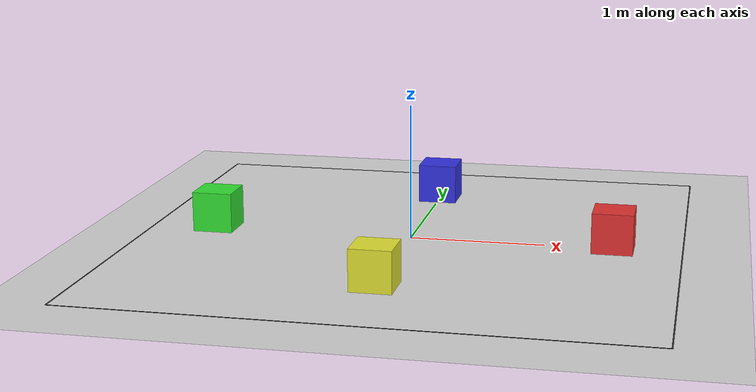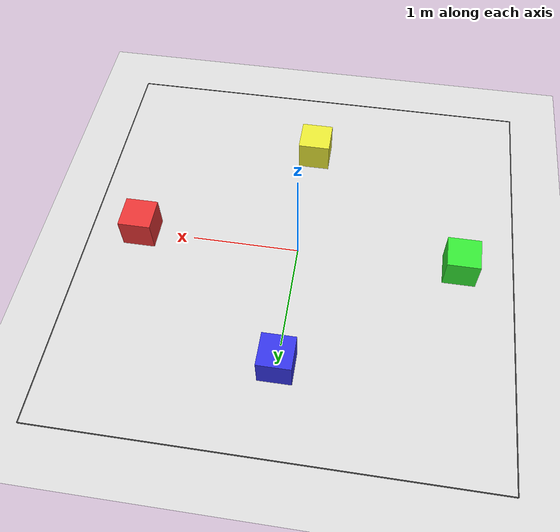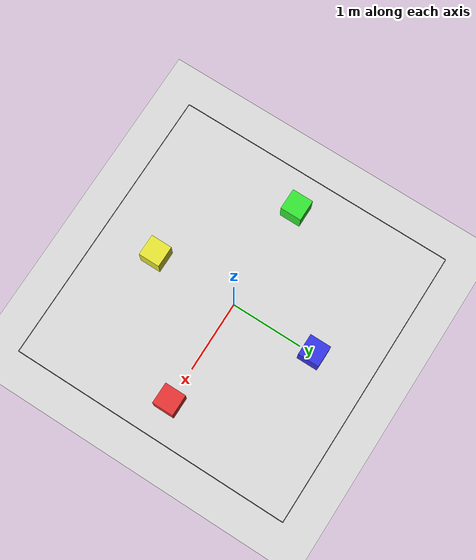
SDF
<?xml version="1.0" ?>
<sdf version="1.6">
  <world name="hover_lab">

    <!-- ── Physics ─────────────────────────────────────────────── -->
    <physics type="ode">
      <max_step_size>0.001</max_step_size>
      <real_time_factor>1.0</real_time_factor>
      <real_time_update_rate>1000</real_time_update_rate>
      <ode>
        <solver>
          <type>quick</type>
          <iters>50</iters>
        </solver>
      </ode>
    </physics>

    <!-- ── Lighting ────────────────────────────────────────────── -->
    <include>
      <uri>model://sun</uri>
    </include>

    <!-- ── Ground Plane (ultra-low friction = air cushion) ──────  -->
    <model name="ground_plane">
      <static>true</static>
      <link name="link">
        <collision name="collision">
          <geometry>
            <plane>
              <normal>0 0 1</normal>
              <size>10 10</size>
            </plane>
          </geometry>
          <surface>
            <friction>
              <ode>
                <mu>0.01</mu>
                <mu2>0.01</mu2>
              </ode>
            </friction>
            <bounce>
              <restitution_coefficient>0.0</restitution_coefficient>
            </bounce>
          </surface>
        </collision>
        <visual name="visual">
          <geometry>
            <plane>
              <normal>0 0 1</normal>
              <size>10 10</size>
            </plane>
          </geometry>
          <material>
            <ambient>0.85 0.85 0.85 1</ambient>
            <diffuse>0.85 0.85 0.85 1</diffuse>
          </material>
        </visual>
      </link>
    </model>

    <!-- ── Lab Floor Border Lines (visual only) ────────────────── -->
    <model name="floor_border_x1">
      <static>true</static>
      <pose>0 -2 0.001 0 0 0</pose>
      <link name="link">
        <visual name="v">
          <geometry><box><size>4 0.01 0.002</size></box></geometry>
          <material>
            <ambient>0.2 0.2 0.2 1</ambient>
            <diffuse>0.2 0.2 0.2 1</diffuse>
          </material>
        </visual>
      </link>
    </model>
    <model name="floor_border_x2">
      <static>true</static>
      <pose>0 2 0.001 0 0 0</pose>
      <link name="link">
        <visual name="v">
          <geometry><box><size>4 0.01 0.002</size></box></geometry>
          <material>
            <ambient>0.2 0.2 0.2 1</ambient>
            <diffuse>0.2 0.2 0.2 1</diffuse>
          </material>
        </visual>
      </link>
    </model>
    <model name="floor_border_y1">
      <static>true</static>
      <pose>-2 0 0.001 0 0 0</pose>
      <link name="link">
        <visual name="v">
          <geometry><box><size>0.01 4 0.002</size></box></geometry>
          <material>
            <ambient>0.2 0.2 0.2 1</ambient>
            <diffuse>0.2 0.2 0.2 1</diffuse>
          </material>
        </visual>
      </link>
    </model>
    <model name="floor_border_y2">
      <static>true</static>
      <pose>2 0 0.001 0 0 0</pose>
      <link name="link">
        <visual name="v">
          <geometry><box><size>0.01 4 0.002</size></box></geometry>
          <material>
            <ambient>0.2 0.2 0.2 1</ambient>
            <diffuse>0.2 0.2 0.2 1</diffuse>
          </material>
        </visual>
      </link>
    </model>

    <!-- ── Obstacle Boxes (0.3 m cubes, diamond pattern) ───────── -->
    <model name="obstacle_1">
      <static>true</static>
      <pose>1.5 0 0.15 0 0 0</pose>
      <link name="link">
        <collision name="c">
          <geometry><box><size>0.3 0.3 0.3</size></box></geometry>
        </collision>
        <visual name="v">
          <geometry><box><size>0.3 0.3 0.3</size></box></geometry>
          <material>
            <ambient>0.9 0.2 0.2 1</ambient>
            <diffuse>0.9 0.2 0.2 1</diffuse>
          </material>
        </visual>
      </link>
    </model>

    <model name="obstacle_2">
      <static>true</static>
      <pose>-1.5 0 0.15 0 0 0</pose>
      <link name="link">
        <collision name="c">
          <geometry><box><size>0.3 0.3 0.3</size></box></geometry>
        </collision>
        <visual name="v">
          <geometry><box><size>0.3 0.3 0.3</size></box></geometry>
          <material>
            <ambient>0.2 0.9 0.2 1</ambient>
            <diffuse>0.2 0.9 0.2 1</diffuse>
          </material>
        </visual>
      </link>
    </model>

    <model name="obstacle_3">
      <static>true</static>
      <pose>0 1.2 0.15 0 0 0</pose>
      <link name="link">
        <collision name="c">
          <geometry><box><size>0.3 0.3 0.3</size></box></geometry>
        </collision>
        <visual name="v">
          <geometry><box><size>0.3 0.3 0.3</size></box></geometry>
          <material>
            <ambient>0.2 0.2 0.9 1</ambient>
            <diffuse>0.2 0.2 0.9 1</diffuse>
          </material>
        </visual>
      </link>
    </model>

    <model name="obstacle_4">
      <static>true</static>
      <pose>0 -1.2 0.15 0 0 0</pose>
      <link name="link">
        <collision name="c">
          <geometry><box><size>0.3 0.3 0.3</size></box></geometry>
        </collision>
        <visual name="v">
          <geometry><box><size>0.3 0.3 0.3</size></box></geometry>
          <material>
            <ambient>0.9 0.9 0.2 1</ambient>
            <diffuse>0.9 0.9 0.2 1</diffuse>
          </material>
        </visual>
      </link>
    </model>

    <!-- ── Camera (default world view) ─────────────────────────── -->
    <gui fullscreen="0">
      <camera name="user_camera">
        <pose>-2.0 -2.0 2.5 0 0.55 0.78</pose>
        <view_controller>orbit</view_controller>
      </camera>
    </gui>

  </world>
</sdf>
